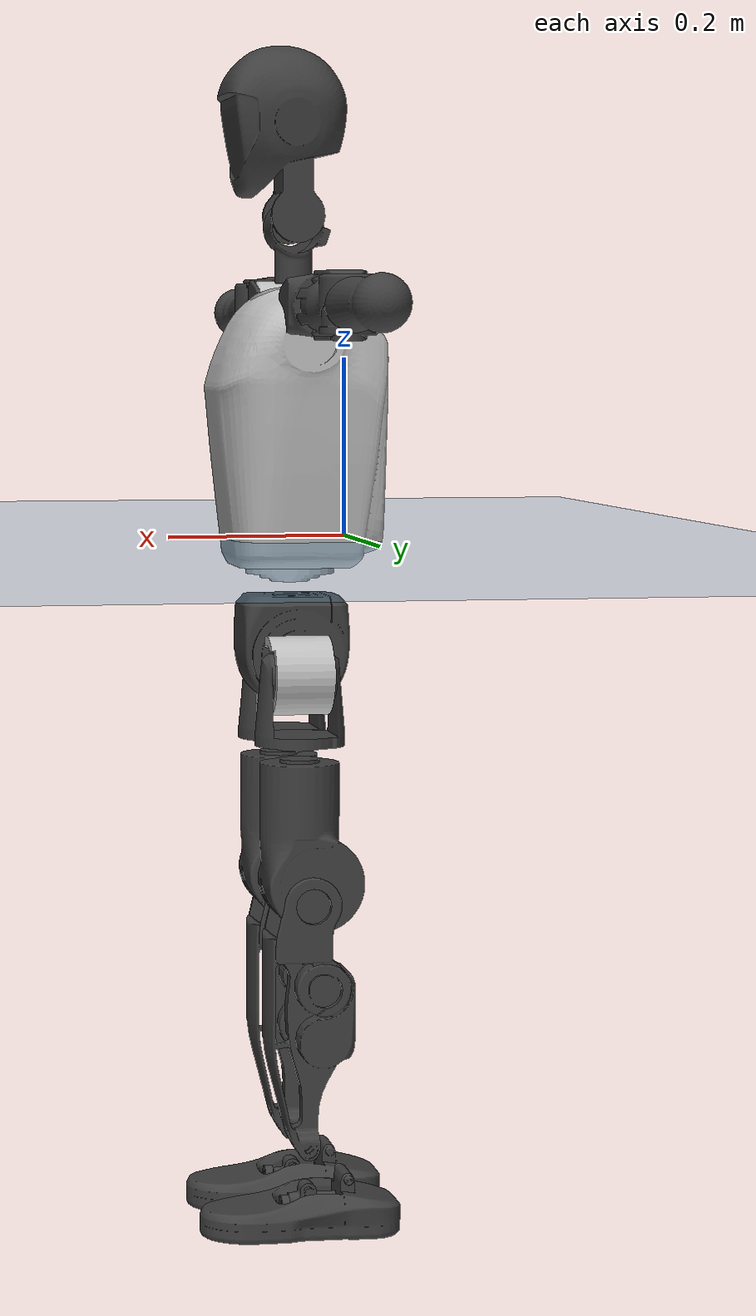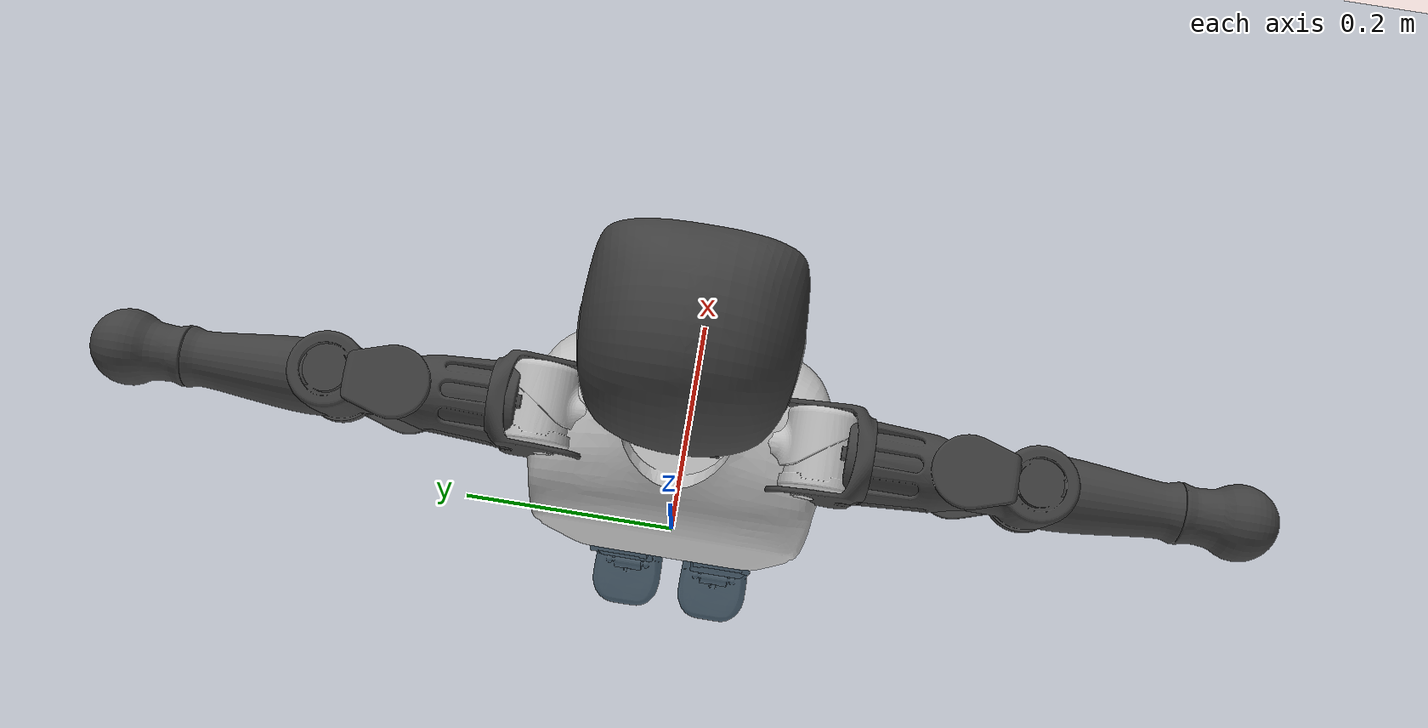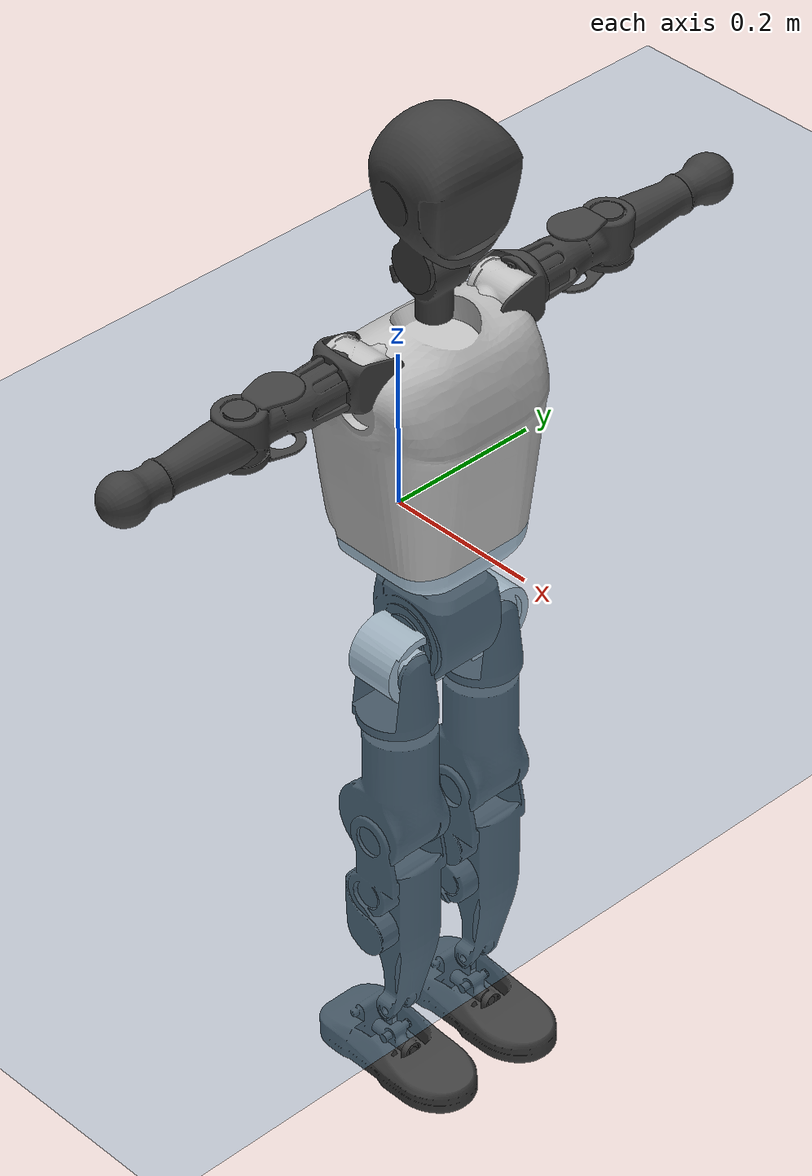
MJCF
<mujoco model="T1">
  <compiler angle="radian" assetdir="assets" balanceinertia="true" inertiafromgeom="false"/>

  <option timestep="0.005" density="1.2" viscosity="2e-05"/>

  <size nkey="1"/>

  <visual>
    <quality shadowsize="8192"/>
    <map shadowclip="0.5"/>
  </visual>

  <default>
    <default class="/">
      <joint armature="0.01" damping="0.01" frictionloss="0.1"/>
      <geom contype="0" conaffinity="0" group="1" solref="-1000 -80"/>
      <site size="0.01 0.005 0.005" group="5"/>
      <general forcelimited="true" biastype="affine" gainprm="25" biasprm="0 -25 -0.6"/>
      <default class="t1">
        <geom rgba="0.25 0.25 0.25 1"/>
        <default class="visual">
          <geom type="mesh" group="2"/>
        </default>
        <default class="collision">
          <geom group="3"/>
        </default>
        <default class="foot">
          <geom size="0.1115 0.05 0.015" type="box" condim="6" group="4" priority="1" solimp="0.015 1 0.015"/>
        </default>
        <default class="reward_collision_sphere">
          <geom group="5" rgba="1 0 0 1"/>
        </default>
      </default>
    </default>
  </default>

  <asset>
    <texture type="skybox" colorspace="auto" name="//unnamed_texture_0" builtin="gradient" rgb1="0.95 0.95 0.95" rgb2="0.95 0.95 0.95" width="100" height="600"/>
    <texture type="2d" colorspace="auto" name="texplane" builtin="checker" rgb1="0.345 0.575 0.748" rgb2="0.345 0.575 0.748" markrgb="1 1 1" width="512" height="512"/>
    <material name="MatPlane" class="/" texture="texplane" texuniform="true" texrepeat="2 2" specular="0.9"/>
    <mesh name="Trunk" class="/" file="Trunk.stl"/>
    <mesh name="H1" class="/" file="H1.stl"/>
    <mesh name="H2" class="/" file="H2.stl"/>
    <mesh name="AL1" class="/" file="AL1.stl"/>
    <mesh name="AL2" class="/" file="AL2.stl"/>
    <mesh name="AL3" class="/" file="AL3.stl"/>
    <mesh name="left_hand_link" class="/" file="left_hand_link.stl"/>
    <mesh name="AR1" class="/" file="AR1.stl"/>
    <mesh name="AR2" class="/" file="AR2.stl"/>
    <mesh name="AR3" class="/" file="AR3.stl"/>
    <mesh name="right_hand_link" class="/" file="right_hand_link.stl"/>
    <mesh name="Waist" class="/" file="Waist.stl"/>
    <mesh name="Hip_Pitch_Left" class="/" file="Hip_Pitch_Left.stl"/>
    <mesh name="Hip_Roll_Left" class="/" file="Hip_Roll_Left.stl"/>
    <mesh name="Hip_Yaw_Left" class="/" file="Hip_Yaw_Left.stl"/>
    <mesh name="Shank_Left" class="/" file="Shank_Left.stl"/>
    <mesh name="Ankle_Cross_Left" class="/" file="Ankle_Cross_Left.stl"/>
    <mesh name="left_foot_link" class="/" file="left_foot_link.stl"/>
    <mesh name="Hip_Pitch_Right" class="/" file="Hip_Pitch_Right.stl"/>
    <mesh name="Hip_Roll_Right" class="/" file="Hip_Roll_Right.stl"/>
    <mesh name="Hip_Yaw_Right" class="/" file="Hip_Yaw_Right.stl"/>
    <mesh name="Shank_Right" class="/" file="Shank_Right.stl"/>
    <mesh name="Ankle_Cross_Right" class="/" file="Ankle_Cross_Right.stl"/>
    <mesh name="right_foot_link" class="/" file="right_foot_link.stl"/>
  </asset>

  <worldbody>
    <geom name="floor" class="/" size="100 100 0.125" type="plane" group="0" material="MatPlane"/>
    <light name="toplight_shadow" class="/" pos="0 0 5" dir="0.0990148 0.0990148 -0.990148" type="directional" ambient="0.04 0.04 0.04" diffuse="0.55 0.55 0.55" specular="0.12 0.12 0.12"/>
    <light name="toplight_fill" class="/" pos="0 0 5" dir="0.0990148 0.0990148 -0.990148" type="directional" castshadow="false" ambient="0.04 0.04 0.04" diffuse="0.3 0.3 0.3" specular="0.08 0.08 0.08"/>
    <body name="trunk" childclass="t1" pos="9.45283e-05 0.00146583 0.00151222" quat="1 6.67283e-05 6.6077e-05 -9.972e-05">
      <inertial pos="0.0505398 -0.00277236 0.123095" quat="0.999877 0.00925028 -0.0102144 0.0075347" mass="8.6035" diaginertia="0.066044 0.00639578 0.117605"/>
      <joint name="//unnamed_joint_0" type="free" armature="0" damping="0" frictionloss="0"/>
      <geom name="//unnamed_geom_1" class="visual" rgba="0.76 0.76 0.76 1" mesh="Trunk"/>
      <geom name="//unnamed_geom_2" class="collision" size="0.0681939 0.0909252 0.136388" pos="0.0562799 0 0.140751" type="box"/>
      <geom name="//unnamed_geom_3" class="reward_collision_sphere" size="0.104564" pos="0.0562799 0 0.117293"/>
      <geom name="//unnamed_geom_4" class="reward_collision_sphere" size="0.0136388" pos="0.0562799 0.0524306 0"/>
      <geom name="//unnamed_geom_5" class="reward_collision_sphere" size="0.0136388" pos="0.0562799 -0.0524306 0"/>
      <geom name="//unnamed_geom_6" class="reward_collision_sphere" size="0.0136388" pos="0.0562799 0.0660008 0.211127"/>
      <geom name="//unnamed_geom_7" class="reward_collision_sphere" size="0.0136388" pos="0.0562799 -0.0660008 0.211127"/>
      <site name="imu" pos="0.000855423 0.00254144 -0.013783" size="0.00909252"/>
      <camera name="track" pos="0 -1.23366 0" quat="0.707107 0.707107 0 0" mode="trackcom"/>
      <camera name="ego_camera" pos="0.114436 0 0.49263" quat="-0.5 -0.5 0.5 0.5"/>
      <body name="H1" pos="0.0580899 -0.00297381 0.282505" quat="1 0.000136677 0.000310241 8.29278e-06">
        <inertial pos="0.000407408 -0.0025566 0.0700407" quat="0.765481 -0.0250551 0.0057006 0.642946" mass="0.323628" diaginertia="0.000164793 2.00524e-05 0.00031358"/>
        <joint name="AAHead_yaw" pos="0 0 0" axis="-0.000316241 0.0136972 0.999906" stiffness="0.00293978" range="-1.51462 1.55383" armature="0.00939953" damping="0" frictionloss="0.0805337"/>
        <geom name="//unnamed_geom_8" class="visual" mesh="H1"/>
        <body name="H2" pos="-0.000388521 -0.000924302 0.0745284" quat="1 0.000147913 0.000717159 -0.000376548">
          <inertial pos="0.00399527 0.00247334 0.117174" quat="0.988223 0.100054 -0.0753211 -0.0879268" mass="0.475154" diaginertia="0.00147289 0.000166878 0.00392412"/>
          <joint name="Head_pitch" pos="0 0 0" axis="0.00648449 -0.999969 -0.00441971" range="-1.18466 0.32992" armature="0.00855116" damping="0.0144078" frictionloss="0.0864904"/>
          <geom name="//unnamed_geom_9" class="visual" mesh="H2"/>
          <geom name="//unnamed_geom_10" class="collision" size="0.0727401" pos="0.00937998 0 0.129022"/>
          <geom name="//unnamed_geom_11" class="reward_collision_sphere" size="0.0818327" pos="0.01876 0 0.117293"/>
        </body>
      </body>
      <body name="AL1" pos="0.0526637 0.0634229 0.25501" quat="1 -0.000358297 0.000232182 0.000139655">
        <inertial pos="0.00168366 0.025146 0.000158584" quat="0.504381 0.495965 -0.504229 0.49535" mass="0.388203" diaginertia="0.000938439 0.000112633 0.000642122"/>
        <joint name="Left_Shoulder_Pitch" pos="0 0 0" axis="0.00648794 0.999908 -0.0119089" range="-3.31595 1.2179" armature="0.00809287" damping="0" frictionloss="0.0783311"/>
        <geom name="//unnamed_geom_12" class="visual" rgba="0.76 0.76 0.76 1" mesh="AL1"/>
        <body name="AL2" pos="-0.00126206 0.0270611 0.00112121" quat="1 -1.40667e-05 -1.6502e-05 1.17269e-05">
          <inertial pos="0.0024274 0.0260034 -0.000364118" quat="0.476928 0.516328 -0.493004 0.51273" mass="0.121277" diaginertia="0.000293607 3.08073e-05 0.000397056"/>
          <joint name="Left_Shoulder_Roll" pos="0 0 0" axis="-0.999991 -0.00195247 -0.00371106" range="-1.57526 1.70527" armature="0.0100387" damping="0.0148109" frictionloss="0.0887069"/>
          <geom name="//unnamed_geom_13" class="visual" mesh="AL2"/>
          <body name="AL3" pos="-0.00187621 0.0345299 -0.00140358" quat="1 -2.77693e-05 0.000163274 0.000118113">
            <inertial pos="-0.000445379 0.0540595 0.00239786" quat="0.702735 0.711433 -0.00510764 -4.15236e-05" mass="0.752127" diaginertia="0.00891172 0.00109864 0.0013448"/>
            <joint name="Left_Elbow_Pitch" pos="0 0 0" axis="0.00803365 -0.999921 -0.00962914" stiffness="0.011976" range="-2.25898 2.24958" armature="0.00949615" damping="0.010592" frictionloss="0.0863665"/>
            <geom name="//unnamed_geom_14" class="visual" mesh="AL3"/>
            <geom name="//unnamed_geom_15" class="collision" size="0.0272776 0.0681939" pos="0 0.0308415 0" quat="0.707105 0.707108 0 0" type="cylinder"/>
            <geom name="//unnamed_geom_16" class="reward_collision_sphere" size="0.0327331"/>
            <body name="left_hand_link" pos="-0.00214972 0.0934498 0.000204406" quat="1 0.000168693 3.40863e-05 -0.00036589">
              <inertial pos="-0.00139186 0.0693341 -0.000311974" quat="0.703595 0.710553 -0.00357911 -0.00742582" mass="0.237959" diaginertia="0.00589199 0.000739304 0.000473879"/>
              <joint name="Left_Elbow_Yaw" pos="0 0 0" axis="-0.00438227 0.000228679 0.99999" stiffness="0.0128934" range="-2.49497 -0.018292" armature="0.00863113" damping="0.00699996" frictionloss="0.102985"/>
              <geom name="//unnamed_geom_17" class="visual" mesh="left_hand_link"/>
              <geom name="//unnamed_geom_18" class="collision" size="0.0272776 0.0795595" pos="0 0.0801879 0" quat="0.707105 0.707108 0 0" type="cylinder"/>
              <geom name="//unnamed_geom_19" class="reward_collision_sphere" size="0.0454626"/>
              <geom name="//unnamed_geom_20" class="reward_collision_sphere" size="0.0318238" pos="0 0.0678513 0"/>
              <geom name="//unnamed_geom_21" class="reward_collision_sphere" size="0.0318238" pos="0 0.132618 0"/>
            </body>
          </body>
        </body>
      </body>
      <body name="AR1" pos="0.0515124 -0.0640999 0.256584" quat="1 -5.53398e-05 0.000460339 0.00011298">
        <inertial pos="-0.000925297 -0.0284745 -0.0012238" quat="0.508134 0.494983 -0.51014 0.486363" mass="0.412156" diaginertia="0.00100685 0.000111853 0.000658948"/>
        <joint name="Right_Shoulder_Pitch" pos="0 0 0" axis="0.000630108 -0.999981 0.00605629" range="-1.22394 3.30555" armature="0.00841737" damping="0.0199158" frictionloss="0.0933361"/>
        <geom name="//unnamed_geom_22" class="visual" rgba="0.76 0.76 0.76 1" mesh="AR1"/>
        <body name="AR2" pos="-0.00143481 -0.0292392 0.00180631" quat="1 -2.19312e-05 -2.04121e-05 -4.74561e-05">
          <inertial pos="0.00521837 -0.0234421 0.00113371" quat="0.508309 0.481034 -0.522126 0.487455" mass="0.119532" diaginertia="0.000291683 2.97375e-05 0.000393955"/>
          <joint name="Right_Shoulder_Roll" pos="0 0 0" axis="-0.999991 0.000670078 0.00412716" range="-1.75542 1.60443" armature="0.00854282" damping="0" frictionloss="0.0958937"/>
          <geom name="//unnamed_geom_23" class="visual" mesh="AR2"/>
          <body name="AR3" pos="-0.000702495 -0.0358485 -0.0030266" quat="0.999999 0.000798291 -0.00100209 -4.9082e-06">
            <inertial pos="-0.000106641 -0.0513145 -0.0010153" quat="0.7074 0.706678 -0.0138051 0.000682255" mass="0.760257" diaginertia="0.00910399 0.00110908 0.00134691"/>
            <joint name="Right_Elbow_Pitch" pos="0 0 0" axis="-0.000254992 0.999998 -0.0017686" stiffness="0.0125875" range="-2.29862 2.25417" armature="0.00919846" damping="0" frictionloss="0.0905244"/>
            <geom name="//unnamed_geom_24" class="visual" mesh="AR3"/>
            <geom name="//unnamed_geom_25" class="collision" size="0.0272776 0.0681939" pos="0 -0.0308415 0" quat="0.707105 0.707108 0 0" type="cylinder"/>
            <geom name="//unnamed_geom_26" class="reward_collision_sphere" size="0.0327331"/>
            <body name="right_hand_link" pos="0.000685205 -0.0923502 -0.00145276" quat="1 -0.000177807 0.000127465 0.000157964">
              <inertial pos="-0.00151507 -0.0684221 0.00161163" quat="0.698531 0.715578 0.000450244 -0.00119377" mass="0.242198" diaginertia="0.00580402 0.000697216 0.000458393"/>
              <joint name="Right_Elbow_Yaw" pos="0 0 0" axis="0.00113685 -0.0100034 0.999949" range="0.0539221 2.45054" armature="0.00862604" damping="0.00291211" frictionloss="0.0911129"/>
              <geom name="//unnamed_geom_27" class="visual" mesh="right_hand_link"/>
              <geom name="//unnamed_geom_28" class="collision" size="0.0272776 0.0795595" pos="0 -0.0801879 0" quat="0.707105 0.707108 0 0" type="cylinder"/>
              <geom name="//unnamed_geom_29" class="reward_collision_sphere" size="0.0454626"/>
              <geom name="//unnamed_geom_30" class="reward_collision_sphere" size="0.0318238" pos="0 -0.0678513 0"/>
              <geom name="//unnamed_geom_31" class="reward_collision_sphere" size="0.0318238" pos="0 -0.132618 0"/>
            </body>
          </body>
        </body>
      </body>
      <body name="Waist" pos="0.0608966 -0.000203422 -0.133372" quat="1 0.000211827 -0.000900271 0.000288437">
        <inertial pos="0.00265264 -0.00191748 0.00984406" quat="0.983665 0.000184624 -0.179997 0.00209307" mass="2.01942" diaginertia="0.00395475 0.000484286 0.0103882"/>
        <joint name="Waist" pos="0 0 0" axis="0.00432439 0.0113432 0.999926" stiffness="0.00187657" range="-1.54876 1.58377" armature="0.010294" damping="0" frictionloss="0.092672"/>
        <geom name="//unnamed_geom_32" class="visual" mesh="Waist"/>
        <body name="Hip_Pitch_Left" pos="0.00414933 0.06575 0.000847716" quat="1 0.000418024 -2.33137e-05 0.000531031">
          <inertial pos="0.00011528 -0.00743958 -0.021909" quat="0.977253 0.211777 0.00771748 0.00823868" mass="0.766907" diaginertia="0.00123846 0.000124329 0.00259532"/>
          <joint name="Left_Hip_Pitch" pos="0 0 0" axis="0.00430662 0.999873 0.0153203" stiffness="0.00591418" range="-1.82113 1.62102" armature="0.00798311" damping="0.0103552" frictionloss="0.103432"/>
          <geom name="//unnamed_geom_33" class="visual" rgba="0.76 0.76 0.76 1" mesh="Hip_Pitch_Left"/>
          <body name="Hip_Roll_Left" pos="0.000126536 0.000328406 -0.0214034" quat="1 0.000455392 -0.000494982 0.000457269">
            <inertial pos="0.00103604 -0.00133523 -0.0608236" quat="0.707544 0.000244275 -0.00577849 0.706646" mass="0.292685" diaginertia="0.00127598 0.000139782 0.00112705"/>
            <joint name="Left_Hip_Roll" pos="0 0 0" axis="-0.999967 0.0049971 -0.00639724" range="-1.60155 0.20074" armature="0.00917251" damping="0.0184224" frictionloss="0.0919167"/>
            <geom name="//unnamed_geom_34" class="visual" mesh="Hip_Roll_Left"/>
            <geom name="//unnamed_geom_35" class="reward_collision_sphere" size="0.0500089"/>
            <body name="Hip_Yaw_Left" pos="-0.00207018 0.000866878 -0.0957632" quat="1 -7.06912e-05 4.36346e-05 3.83436e-05">
              <inertial pos="-0.00495797 -0.0020174 -0.107373" quat="0.698514 -0.0317113 -0.0265972 0.714398" mass="1.59859" diaginertia="0.0177583 0.00220895 0.0057103"/>
              <joint name="Left_Hip_Yaw" pos="0 0 0" axis="0.0096221 0.00785192 -0.999923" range="-0.967879 1.01534" armature="0.00939888" damping="0" frictionloss="0.103301"/>
              <geom name="//unnamed_geom_36" class="visual" mesh="Hip_Yaw_Left"/>
              <geom name="//unnamed_geom_37" class="collision" size="0.0454626 0.0727401" type="cylinder"/>
              <body name="Shank_Left" pos="-0.00916812 -0.000435582 -0.156855" quat="1 -0.000161184 -0.000127606 2.77982e-05">
                <inertial pos="-0.00466389 -0.000488896 -0.145986" quat="0.997946 -0.0019504 -0.0264489 0.0583149" mass="1.28674" diaginertia="0.0249957 0.00307669 0.00431323"/>
                <joint name="Left_Knee_Pitch" pos="0 0 0" axis="0.000171044 1 -0.000438895" stiffness="0.00924525" range="0.0495405 2.3961" armature="0.00851799" damping="0.0179184" frictionloss="0.0923676"/>
                <geom name="//unnamed_geom_38" class="visual" mesh="Shank_Left"/>
                <geom name="//unnamed_geom_39" class="collision" size="0.0454626 0.0681939" pos="0 0 -0.140751" type="cylinder"/>
                <geom name="//unnamed_geom_40" class="reward_collision_sphere" size="0.0591014"/>
                <body name="Ankle_Cross_Left" pos="-0.000780313 0.000315067 -0.329298" quat="0.999999 -0.000205563 -0.000966096 0.000991055">
                  <inertial pos="-0.00166087 0.0023448 -0.0120238" quat="0.439278 0.552514 0.550744 0.445472" mass="0.0531837" diaginertia="2.10611e-05 2.139e-06 2.42891e-05"/>
                  <joint name="Left_Ankle_Pitch" pos="0 0 0" axis="-0.0155402 0.999872 0.00374534" stiffness="0.00818795" range="-0.921424 0.401369" armature="0.00888932" damping="0.0216676" frictionloss="0.0826146"/>
                  <geom name="//unnamed_geom_41" class="visual" mesh="Ankle_Cross_Left"/>
                  <body name="left_foot_link" pos="-0.000735559 0.00358089 -0.0165989" quat="1 -0.000371393 0.000350434 -0.000510897">
                    <inertial pos="0.0023709 0.00121978 -0.00977014" quat="-0.00463669 0.616879 -0.00896319 0.786993" mass="0.530865" diaginertia="0.00197321 0.000226355 0.00517054"/>
                    <joint name="Left_Ankle_Roll" pos="0 0 0" axis="-0.999918 0.0127759 0.000896247" stiffness="0.00962561" range="-0.494646 0.432509" armature="0.00857686" damping="0.0102645" frictionloss="0.102974"/>
                    <geom name="//unnamed_geom_42" class="visual" mesh="left_foot_link"/>
                    <geom name="left_foot" class="foot" size="0.0983325 0.0519406 0.0127026" pos="0.00937998 0 -0.0175939"/>
                    <geom name="//unnamed_geom_44" class="reward_collision_sphere" size="0.0472811" pos="0.00937998 0 -0.0175939"/>
                    <geom name="//unnamed_geom_45" class="reward_collision_sphere" size="0.0272776" pos="0.0891098 -0.0141871 -0.0175939"/>
                    <geom name="//unnamed_geom_46" class="reward_collision_sphere" size="0.0272776" pos="-0.0656598 -0.0141871 -0.0175939"/>
                    <site name="left_foot" class="foot" pos="0.00937998 0 -0.0175939" size="0.00909252"/>
                  </body>
                </body>
              </body>
            </body>
          </body>
        </body>
        <body name="Hip_Pitch_Right" pos="0.000877907 -0.062288 -0.000976885" quat="1 5.5057e-05 -0.000503147 0.000241394">
          <inertial pos="6.81667e-05 0.00579228 -0.021305" quat="0.976028 -0.216884 0.0181784 -0.000657352" mass="0.715581" diaginertia="0.00127734 0.000125812 0.00267268"/>
          <joint name="Right_Hip_Pitch" pos="0 0 0" axis="-0.0147593 -0.99988 0.00461508" range="-1.53305 1.74756" armature="0.00815103" damping="0.0153528" frictionloss="0.0786056"/>
          <geom name="//unnamed_geom_47" class="visual" rgba="0.76 0.76 0.76 1" mesh="Hip_Pitch_Right"/>
          <body name="Hip_Roll_Right" pos="0.000531177 -0.00195966 -0.0259092" quat="1 -0.000490742 2.69768e-05 0.000133743">
            <inertial pos="0.000727034 0.000275511 -0.064629" quat="0.706883 -0.0067814 -0.00672061 0.707266" mass="0.300978" diaginertia="0.00130511 0.000136995 0.00116534"/>
            <joint name="Right_Hip_Roll" pos="0 0 0" axis="-0.999895 0.0138535 0.0042404" range="-0.198448 1.5642" armature="0.00936381" damping="0.0191913" frictionloss="0.0844394"/>
            <geom name="//unnamed_geom_48" class="visual" mesh="Hip_Roll_Right"/>
            <geom name="//unnamed_geom_49" class="reward_collision_sphere" size="0.0500089"/>
            <body name="Hip_Yaw_Right" pos="0.00146207 0.00312508 -0.0954382" quat="1 -0.000467337 -0.000264912 -0.000536513">
              <inertial pos="-0.00615128 0.00133208 -0.101952" quat="0.707903 -0.0357846 -0.0428552 0.704099" mass="1.72" diaginertia="0.0191743 0.00231317 0.00571918"/>
              <joint name="Right_Hip_Yaw" pos="0 0 0" axis="-0.0119286 -0.00757971 -0.9999" stiffness="0.00127321" range="-1.0559 1.0238" armature="0.00834765" damping="0.0221789" frictionloss="0.0906827"/>
              <geom name="//unnamed_geom_50" class="visual" mesh="Hip_Yaw_Right"/>
              <geom name="//unnamed_geom_51" class="collision" size="0.0454626 0.0727401" type="cylinder"/>
              <body name="Shank_Right" pos="-0.0129161 0.00305851 -0.157146" quat="1 -0.000365021 -0.000111514 -2.02037e-05">
                <inertial pos="-0.00478028 -0.00090404 -0.14677" quat="0.998971 -0.00491482 -0.0251119 -0.0374416" mass="1.34258" diaginertia="0.0258025 0.00297159 0.00430151"/>
                <joint name="Right_Knee_Pitch" pos="0 0 0" axis="-0.00960886 -0.999953 0.00112674" stiffness="0.00105142" range="-2.28689 0.0509301" armature="0.00895973" damping="0.0187035" frictionloss="0.0865745"/>
                <geom name="//unnamed_geom_52" class="visual" mesh="Shank_Right"/>
                <geom name="//unnamed_geom_53" class="collision" size="0.0454626 0.0681939" pos="0 0 -0.140751" type="cylinder"/>
                <geom name="//unnamed_geom_54" class="reward_collision_sphere" size="0.0591014"/>
                <body name="Ankle_Cross_Right" pos="-0.00263769 0.000939113 -0.326583" quat="1 -0.000316769 0.000167627 -0.000433618">
                  <inertial pos="-0.00560555 -0.000945862 -0.00902714" quat="0.445177 0.549434 0.550053 0.444276" mass="0.0552459" diaginertia="2.13376e-05 2.31834e-06 2.52768e-05"/>
                  <joint name="Right_Ankle_Pitch" pos="0 0 0" axis="0.000420654 -0.999993 -0.00374508" range="-0.311339 0.922277" armature="0.00917925" damping="0" frictionloss="0.0854155"/>
                  <geom name="//unnamed_geom_55" class="visual" mesh="Ankle_Cross_Right"/>
                  <body name="right_foot_link" pos="0.000323821 -0.000680764 -0.0120162" quat="0.999999 0.00125166 -0.000385522 -0.000290435">
                    <inertial pos="0.00151843 -0.00195061 -0.0103379" quat="-0.00704772 0.61612 -0.00153168 0.787619" mass="0.517231" diaginertia="0.00190099 0.000207789 0.0046135"/>
                    <joint name="Right_Ankle_Roll" pos="0 0 0" axis="-1 -0.000352239 0.000514776" stiffness="0.00678314" range="-0.472391 0.43285" armature="0.0103368" damping="0.00156107" frictionloss="0.0865915"/>
                    <geom name="//unnamed_geom_56" class="visual" mesh="right_foot_link"/>
                    <geom name="right_foot" class="foot" size="0.100791 0.0466176 0.0142646" pos="0.00937998 0 -0.0175939"/>
                    <geom name="//unnamed_geom_58" class="reward_collision_sphere" size="0.0363701"/>
                    <geom name="//unnamed_geom_59" class="reward_collision_sphere" size="0.0272776" pos="0.00937998 0 -0.0175939"/>
                    <geom name="//unnamed_geom_60" class="reward_collision_sphere" size="0.0272776" pos="0.0891098 0.0141871 -0.0175939"/>
                    <geom name="//unnamed_geom_61" class="reward_collision_sphere" size="0.0272776" pos="-0.0656598 0.0141871 -0.0175939"/>
                    <site name="right_foot" class="foot" pos="0.00937998 0 -0.0175939" size="0.00909252"/>
                  </body>
                </body>
              </body>
            </body>
          </body>
        </body>
      </body>
    </body>
  </worldbody>

  <contact>
    <pair class="/" geom1="floor" geom2="left_foot" name="//unnamed_contact_0"/>
    <pair class="/" geom1="floor" geom2="right_foot" name="//unnamed_contact_1"/>
  </contact>

  <actuator>
    <general name="AAHead_yaw" class="/" joint="AAHead_yaw" forcerange="-6.84158 6.84158" gainprm="23.4043" biasprm="0 -23.4043 -0.502839"/>
    <general name="Head_pitch" class="/" joint="Head_pitch" forcerange="-6.77936 6.77936" gainprm="23.4043" biasprm="0 -23.4043 -0.502839"/>
    <general name="Left_Shoulder_Pitch" class="/" joint="Left_Shoulder_Pitch" forcerange="-14.5706 14.5706" gainprm="23.4043" biasprm="0 -23.4043 -0.502839"/>
    <general name="Left_Shoulder_Roll" class="/" joint="Left_Shoulder_Roll" forcerange="-16.5069 16.5069" gainprm="23.4043" biasprm="0 -23.4043 -0.502839"/>
    <general name="Left_Elbow_Pitch" class="/" joint="Left_Elbow_Pitch" forcerange="-16.3494 16.3494" gainprm="23.4043" biasprm="0 -23.4043 -0.502839"/>
    <general name="Left_Elbow_Yaw" class="/" joint="Left_Elbow_Yaw" forcerange="-15.0856 15.0856" gainprm="23.4043" biasprm="0 -23.4043 -0.502839"/>
    <general name="Right_Shoulder_Pitch" class="/" joint="Right_Shoulder_Pitch" forcerange="-16.898 16.898" gainprm="23.4043" biasprm="0 -23.4043 -0.502839"/>
    <general name="Right_Shoulder_Roll" class="/" joint="Right_Shoulder_Roll" forcerange="-17.0646 17.0646" gainprm="23.4043" biasprm="0 -23.4043 -0.502839"/>
    <general name="Right_Elbow_Pitch" class="/" joint="Right_Elbow_Pitch" forcerange="-16.1968 16.1968" gainprm="23.4043" biasprm="0 -23.4043 -0.502839"/>
    <general name="Right_Elbow_Yaw" class="/" joint="Right_Elbow_Yaw" forcerange="-18.0557 18.0557" gainprm="23.4043" biasprm="0 -23.4043 -0.502839"/>
    <general name="Waist" class="/" joint="Waist" forcerange="-25.8098 25.8098" gainprm="23.4043" biasprm="0 -23.4043 -0.502839"/>
    <general name="Left_Hip_Pitch" class="/" joint="Left_Hip_Pitch" forcerange="-36.8696 36.8696" gainprm="23.4043" biasprm="0 -23.4043 -0.502839"/>
    <general name="Left_Hip_Roll" class="/" joint="Left_Hip_Roll" forcerange="-27.5744 27.5744" gainprm="23.4043" biasprm="0 -23.4043 -0.502839"/>
    <general name="Left_Hip_Yaw" class="/" joint="Left_Hip_Yaw" forcerange="-28.6501 28.6501" gainprm="23.4043" biasprm="0 -23.4043 -0.502839"/>
    <general name="Left_Knee_Pitch" class="/" joint="Left_Knee_Pitch" forcerange="-57.3503 57.3503" gainprm="23.4043" biasprm="0 -23.4043 -0.502839"/>
    <general name="Left_Ankle_Pitch" class="/" joint="Left_Ankle_Pitch" forcerange="-19.653 19.653" gainprm="23.4043" biasprm="0 -23.4043 -0.502839"/>
    <general name="Left_Ankle_Roll" class="/" joint="Left_Ankle_Roll" forcerange="-13.9053 13.9053" gainprm="23.4043" biasprm="0 -23.4043 -0.502839"/>
    <general name="Right_Hip_Pitch" class="/" joint="Right_Hip_Pitch" forcerange="-42.0078 42.0078" gainprm="23.4043" biasprm="0 -23.4043 -0.502839"/>
    <general name="Right_Hip_Roll" class="/" joint="Right_Hip_Roll" forcerange="-24.6698 24.6698" gainprm="23.4043" biasprm="0 -23.4043 -0.502839"/>
    <general name="Right_Hip_Yaw" class="/" joint="Right_Hip_Yaw" forcerange="-24.711 24.711" gainprm="23.4043" biasprm="0 -23.4043 -0.502839"/>
    <general name="Right_Knee_Pitch" class="/" joint="Right_Knee_Pitch" forcerange="-56.1168 56.1168" gainprm="23.4043" biasprm="0 -23.4043 -0.502839"/>
    <general name="Right_Ankle_Pitch" class="/" joint="Right_Ankle_Pitch" forcerange="-19.8448 19.8448" gainprm="23.4043" biasprm="0 -23.4043 -0.502839"/>
    <general name="Right_Ankle_Roll" class="/" joint="Right_Ankle_Roll" forcerange="-13.8138 13.8138" gainprm="23.4043" biasprm="0 -23.4043 -0.502839"/>
  </actuator>

  <sensor>
    <gyro site="imu" name="imu_angular_velocity"/>
    <velocimeter site="imu" name="imu_linear_velocity"/>
    <framelinvel objtype="site" objname="left_foot" name="left_foot_global_linear_velocity"/>
    <framelinvel objtype="site" objname="right_foot" name="right_foot_global_linear_velocity"/>
  </sensor>

  <keyframe>
    <key name="home" qpos="0 0 0.6385 1 0 0 0 0 0 0 1.4 0 -0.4 0 -1.4 0 0.4 0 -0.4 0 0 0.8 -0.4 0 0.4 0 0 -0.8 0.4 0"/>
  </keyframe>
</mujoco>
